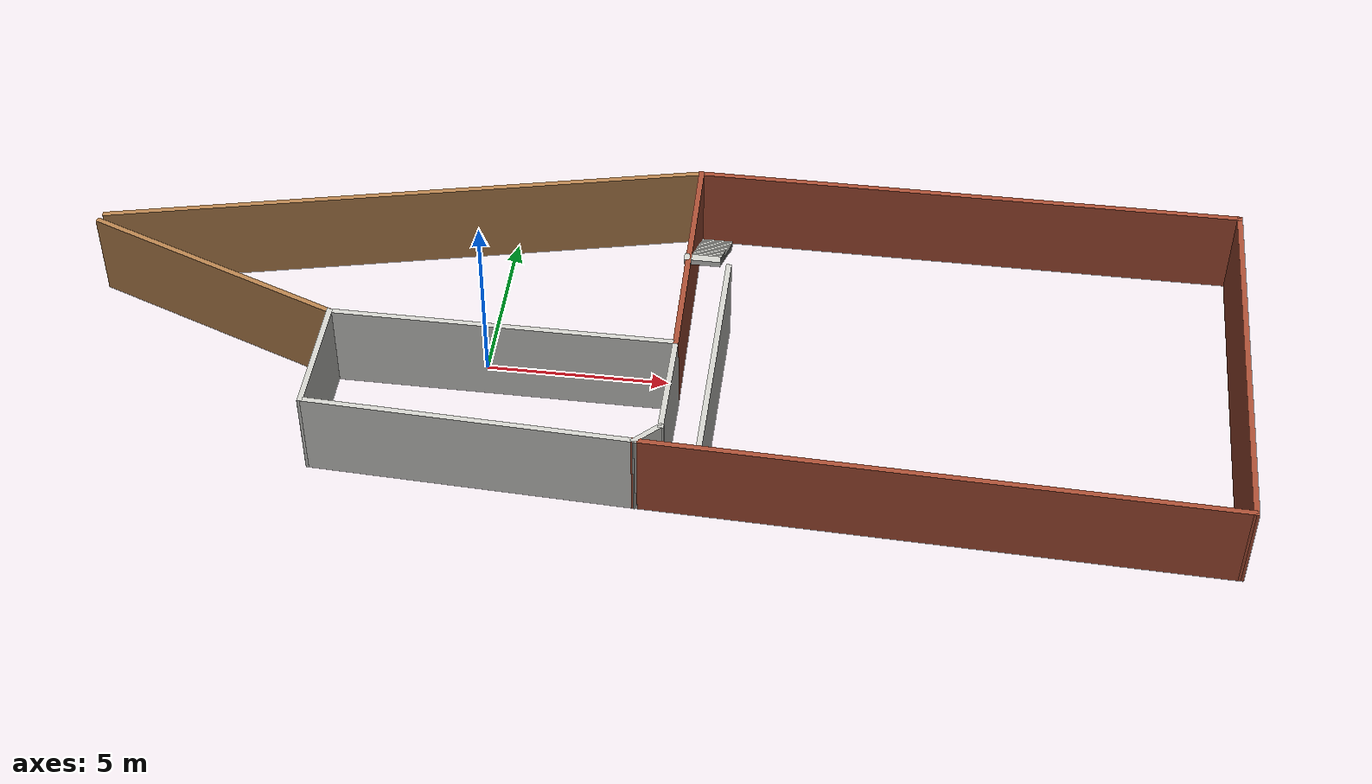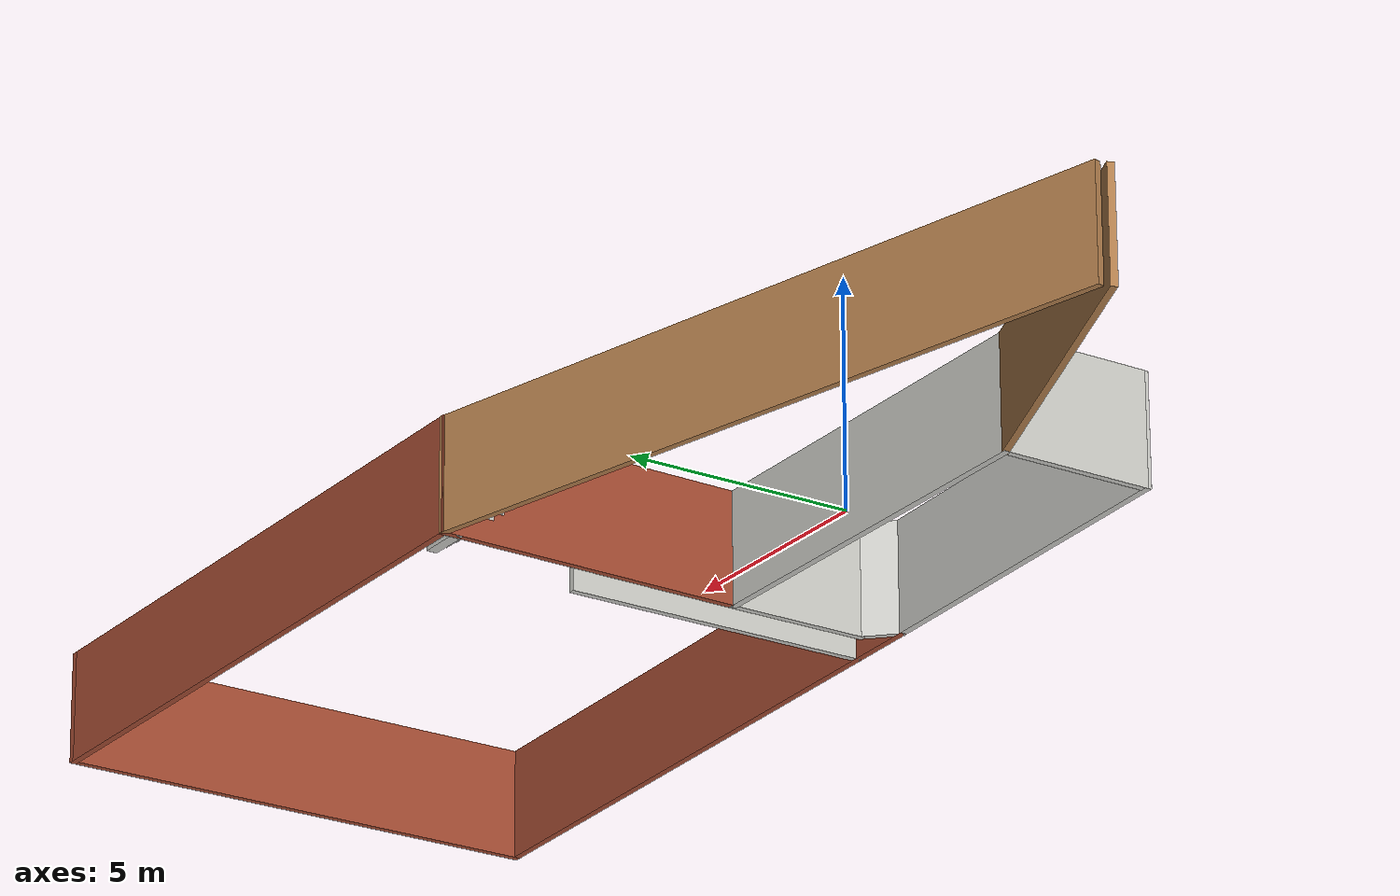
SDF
<?xml version='1.0'?>
<sdf version='1.7'>
  <model name='walls_world'>
    <pose>4.53343 0.476876 0 0 -0 0</pose>
    <link name='Stairs_0'>
      <visual name='Stairs_0_Visual_0'>
        <pose>1.09555 5.24812 0.083333 0 -0 0</pose>
        <geometry>
          <box>
            <size>1 0.233333 0.166667</size>
          </box>
        </geometry>
        <material>
          <script>
            <uri>file://media/materials/scripts/gazebo.material</uri>
            <name>Gazebo/CeilingTiled</name>
          </script>
          <ambient>0.760784 0.662745 0.627451 1</ambient>
        </material>
        <meta>
          <layer>0</layer>
        </meta>
      </visual>
      <collision name='Stairs_0_Collision_0'>
        <geometry>
          <box>
            <size>1 0.233333 0.166667</size>
          </box>
        </geometry>
        <pose>1.09555 5.24812 0.083333 0 -0 0</pose>
      </collision>
      <visual name='Stairs_0_Visual_1'>
        <pose>1.09555 5.01479 0.25 0 -0 0</pose>
        <geometry>
          <box>
            <size>1 0.233333 0.166667</size>
          </box>
        </geometry>
        <material>
          <script>
            <uri>file://media/materials/scripts/gazebo.material</uri>
            <name>Gazebo/CeilingTiled</name>
          </script>
          <ambient>0.760784 0.662745 0.627451 1</ambient>
        </material>
        <meta>
          <layer>0</layer>
        </meta>
      </visual>
      <collision name='Stairs_0_Collision_1'>
        <geometry>
          <box>
            <size>1 0.233333 0.166667</size>
          </box>
        </geometry>
        <pose>1.09555 5.01479 0.25 0 -0 0</pose>
      </collision>
      <visual name='Stairs_0_Visual_2'>
        <pose>1.09555 4.78145 0.416667 0 -0 0</pose>
        <geometry>
          <box>
            <size>1 0.233333 0.166667</size>
          </box>
        </geometry>
        <material>
          <script>
            <uri>file://media/materials/scripts/gazebo.material</uri>
            <name>Gazebo/CeilingTiled</name>
          </script>
          <ambient>0.760784 0.662745 0.627451 1</ambient>
        </material>
        <meta>
          <layer>0</layer>
        </meta>
      </visual>
      <collision name='Stairs_0_Collision_2'>
        <geometry>
          <box>
            <size>1 0.233333 0.166667</size>
          </box>
        </geometry>
        <pose>1.09555 4.78145 0.416667 0 -0 0</pose>
      </collision>
      <visual name='Stairs_0_Visual_3'>
        <pose>1.09555 4.54812 0.583333 0 -0 0</pose>
        <geometry>
          <box>
            <size>1 0.233333 0.166667</size>
          </box>
        </geometry>
        <material>
          <script>
            <uri>file://media/materials/scripts/gazebo.material</uri>
            <name>Gazebo/CeilingTiled</name>
          </script>
          <ambient>0.760784 0.662745 0.627451 1</ambient>
        </material>
        <meta>
          <layer>0</layer>
        </meta>
      </visual>
      <collision name='Stairs_0_Collision_3'>
        <geometry>
          <box>
            <size>1 0.233333 0.166667</size>
          </box>
        </geometry>
        <pose>1.09555 4.54812 0.583333 0 -0 0</pose>
      </collision>
      <visual name='Stairs_0_Visual_4'>
        <pose>1.09555 4.31479 0.75 0 -0 0</pose>
        <geometry>
          <box>
            <size>1 0.233333 0.166667</size>
          </box>
        </geometry>
        <material>
          <script>
            <uri>file://media/materials/scripts/gazebo.material</uri>
            <name>Gazebo/CeilingTiled</name>
          </script>
          <ambient>0.760784 0.662745 0.627451 1</ambient>
        </material>
        <meta>
          <layer>0</layer>
        </meta>
      </visual>
      <collision name='Stairs_0_Collision_4'>
        <geometry>
          <box>
            <size>1 0.233333 0.166667</size>
          </box>
        </geometry>
        <pose>1.09555 4.31479 0.75 0 -0 0</pose>
      </collision>
      <visual name='Stairs_0_Visual_5'>
        <pose>1.09555 4.08145 0.916667 0 -0 0</pose>
        <geometry>
          <box>
            <size>1 0.233333 0.166667</size>
          </box>
        </geometry>
        <material>
          <script>
            <uri>file://media/materials/scripts/gazebo.material</uri>
            <name>Gazebo/CeilingTiled</name>
          </script>
          <ambient>0.760784 0.662745 0.627451 1</ambient>
        </material>
        <meta>
          <layer>0</layer>
        </meta>
      </visual>
      <collision name='Stairs_0_Collision_5'>
        <geometry>
          <box>
            <size>1 0.233333 0.166667</size>
          </box>
        </geometry>
        <pose>1.09555 4.08145 0.916667 0 -0 0</pose>
      </collision>
      <visual name='Stairs_0_Visual_6'>
        <pose>1.09555 3.84812 1.08333 0 -0 0</pose>
        <geometry>
          <box>
            <size>1 0.233333 0.166667</size>
          </box>
        </geometry>
        <material>
          <script>
            <uri>file://media/materials/scripts/gazebo.material</uri>
            <name>Gazebo/CeilingTiled</name>
          </script>
          <ambient>0.760784 0.662745 0.627451 1</ambient>
        </material>
        <meta>
          <layer>0</layer>
        </meta>
      </visual>
      <collision name='Stairs_0_Collision_6'>
        <geometry>
          <box>
            <size>1 0.233333 0.166667</size>
          </box>
        </geometry>
        <pose>1.09555 3.84812 1.08333 0 -0 0</pose>
      </collision>
      <visual name='Stairs_0_Visual_7'>
        <pose>1.09555 3.61479 1.25 0 -0 0</pose>
        <geometry>
          <box>
            <size>1 0.233333 0.166667</size>
          </box>
        </geometry>
        <material>
          <script>
            <uri>file://media/materials/scripts/gazebo.material</uri>
            <name>Gazebo/CeilingTiled</name>
          </script>
          <ambient>0.760784 0.662745 0.627451 1</ambient>
        </material>
        <meta>
          <layer>0</layer>
        </meta>
      </visual>
      <collision name='Stairs_0_Collision_7'>
        <geometry>
          <box>
            <size>1 0.233333 0.166667</size>
          </box>
        </geometry>
        <pose>1.09555 3.61479 1.25 0 -0 0</pose>
      </collision>
      <visual name='Stairs_0_Visual_8'>
        <pose>1.09555 3.38145 1.41667 0 -0 0</pose>
        <geometry>
          <box>
            <size>1 0.233333 0.166667</size>
          </box>
        </geometry>
        <material>
          <script>
            <uri>file://media/materials/scripts/gazebo.material</uri>
            <name>Gazebo/CeilingTiled</name>
          </script>
          <ambient>0.760784 0.662745 0.627451 1</ambient>
        </material>
        <meta>
          <layer>0</layer>
        </meta>
      </visual>
      <collision name='Stairs_0_Collision_8'>
        <geometry>
          <box>
            <size>1 0.233333 0.166667</size>
          </box>
        </geometry>
        <pose>1.09555 3.38145 1.41667 0 -0 0</pose>
      </collision>
      <visual name='Stairs_0_Visual_9'>
        <pose>1.09555 3.14812 1.58333 0 -0 0</pose>
        <geometry>
          <box>
            <size>1 0.233333 0.166667</size>
          </box>
        </geometry>
        <material>
          <script>
            <uri>file://media/materials/scripts/gazebo.material</uri>
            <name>Gazebo/CeilingTiled</name>
          </script>
          <ambient>0.760784 0.662745 0.627451 1</ambient>
        </material>
        <meta>
          <layer>0</layer>
        </meta>
      </visual>
      <collision name='Stairs_0_Collision_9'>
        <geometry>
          <box>
            <size>1 0.233333 0.166667</size>
          </box>
        </geometry>
        <pose>1.09555 3.14812 1.58333 0 -0 0</pose>
      </collision>
      <visual name='Stairs_0_Visual_10'>
        <pose>1.09555 2.91479 1.75 0 -0 0</pose>
        <geometry>
          <box>
            <size>1 0.233333 0.166667</size>
          </box>
        </geometry>
        <material>
          <script>
            <uri>file://media/materials/scripts/gazebo.material</uri>
            <name>Gazebo/CeilingTiled</name>
          </script>
          <ambient>0.760784 0.662745 0.627451 1</ambient>
        </material>
        <meta>
          <layer>0</layer>
        </meta>
      </visual>
      <collision name='Stairs_0_Collision_10'>
        <geometry>
          <box>
            <size>1 0.233333 0.166667</size>
          </box>
        </geometry>
        <pose>1.09555 2.91479 1.75 0 -0 0</pose>
      </collision>
      <visual name='Stairs_0_Visual_11'>
        <pose>1.09555 2.68145 1.91667 0 -0 0</pose>
        <geometry>
          <box>
            <size>1 0.233333 0.166667</size>
          </box>
        </geometry>
        <material>
          <script>
            <uri>file://media/materials/scripts/gazebo.material</uri>
            <name>Gazebo/CeilingTiled</name>
          </script>
          <ambient>0.760784 0.662745 0.627451 1</ambient>
        </material>
        <meta>
          <layer>0</layer>
        </meta>
      </visual>
      <collision name='Stairs_0_Collision_11'>
        <geometry>
          <box>
            <size>1 0.233333 0.166667</size>
          </box>
        </geometry>
        <pose>1.09555 2.68145 1.91667 0 -0 0</pose>
      </collision>
      <visual name='Stairs_0_Visual_12'>
        <pose>1.09555 2.44812 2.08333 0 -0 0</pose>
        <geometry>
          <box>
            <size>1 0.233333 0.166667</size>
          </box>
        </geometry>
        <material>
          <script>
            <uri>file://media/materials/scripts/gazebo.material</uri>
            <name>Gazebo/CeilingTiled</name>
          </script>
          <ambient>0.760784 0.662745 0.627451 1</ambient>
        </material>
        <meta>
          <layer>0</layer>
        </meta>
      </visual>
      <collision name='Stairs_0_Collision_12'>
        <geometry>
          <box>
            <size>1 0.233333 0.166667</size>
          </box>
        </geometry>
        <pose>1.09555 2.44812 2.08333 0 -0 0</pose>
      </collision>
      <visual name='Stairs_0_Visual_13'>
        <pose>1.09555 2.21479 2.25 0 -0 0</pose>
        <geometry>
          <box>
            <size>1 0.233333 0.166667</size>
          </box>
        </geometry>
        <material>
          <script>
            <uri>file://media/materials/scripts/gazebo.material</uri>
            <name>Gazebo/CeilingTiled</name>
          </script>
          <ambient>0.760784 0.662745 0.627451 1</ambient>
        </material>
        <meta>
          <layer>0</layer>
        </meta>
      </visual>
      <collision name='Stairs_0_Collision_13'>
        <geometry>
          <box>
            <size>1 0.233333 0.166667</size>
          </box>
        </geometry>
        <pose>1.09555 2.21479 2.25 0 -0 0</pose>
      </collision>
      <visual name='Stairs_0_Visual_14'>
        <pose>1.09555 1.98145 2.41667 0 -0 0</pose>
        <geometry>
          <box>
            <size>1 0.233333 0.166667</size>
          </box>
        </geometry>
        <material>
          <script>
            <uri>file://media/materials/scripts/gazebo.material</uri>
            <name>Gazebo/CeilingTiled</name>
          </script>
          <ambient>0.760784 0.662745 0.627451 1</ambient>
        </material>
        <meta>
          <layer>0</layer>
        </meta>
      </visual>
      <collision name='Stairs_0_Collision_14'>
        <geometry>
          <box>
            <size>1 0.233333 0.166667</size>
          </box>
        </geometry>
        <pose>1.09555 1.98145 2.41667 0 -0 0</pose>
      </collision>
    </link>
    <link name='Wall_0'>
      <collision name='Wall_0_Collision'>
        <geometry>
          <box>
            <size>3.5 0.15 2.5</size>
          </box>
        </geometry>
        <pose>0 0 1.25 0 -0 0</pose>
      </collision>
      <visual name='Wall_0_Visual'>
        <pose>0 0 1.25 0 -0 0</pose>
        <geometry>
          <box>
            <size>3.5 0.15 2.5</size>
          </box>
        </geometry>
        <material>
          <script>
            <uri>file://media/materials/scripts/gazebo.material</uri>
            <name>Gazebo/CeilingTiled</name>
          </script>
          <ambient>1 1 1 1</ambient>
        </material>
        <meta>
          <layer>0</layer>
        </meta>
      </visual>
      <pose>-8.56343 -3.06188 0 0 -0 1.5708</pose>
    </link>
    <link name='Wall_1'>
      <collision name='Wall_1_Collision'>
        <geometry>
          <box>
            <size>9.5 0.15 2.5</size>
          </box>
        </geometry>
        <pose>0 0 1.25 0 -0 0</pose>
      </collision>
      <visual name='Wall_1_Visual'>
        <pose>0 0 1.25 0 -0 0</pose>
        <geometry>
          <box>
            <size>9.5 0.15 2.5</size>
          </box>
        </geometry>
        <material>
          <script>
            <uri>file://media/materials/scripts/gazebo.material</uri>
            <name>Gazebo/CeilingTiled</name>
          </script>
          <ambient>1 1 1 1</ambient>
        </material>
        <meta>
          <layer>0</layer>
        </meta>
      </visual>
      <pose>-3.88843 -1.38688 0 0 -0 0</pose>
    </link>
    <link name='Wall_10'>
      <collision name='Wall_10_Collision'>
        <geometry>
          <box>
            <size>16.9098 0.15 2.5</size>
          </box>
        </geometry>
        <pose>0 0 1.25 0 -0 0</pose>
      </collision>
      <visual name='Wall_10_Visual'>
        <pose>0 0 1.25 0 -0 0</pose>
        <geometry>
          <box>
            <size>16.9098 0.15 2.5</size>
          </box>
        </geometry>
        <material>
          <script>
            <uri>file://media/materials/scripts/gazebo.material</uri>
            <name>Gazebo/Wood</name>
          </script>
          <ambient>1 1 1 1</ambient>
        </material>
        <meta>
          <layer>0</layer>
        </meta>
      </visual>
      <pose>-7.49968 3.60157 0 0 -0 0.233855</pose>
    </link>
    <link name='Wall_11'>
      <collision name='Wall_11_Collision'>
        <geometry>
          <box>
            <size>15.25 0.15 2.5</size>
          </box>
        </geometry>
        <pose>0 0 1.25 0 -0 0</pose>
      </collision>
      <visual name='Wall_11_Visual'>
        <pose>0 0 1.25 0 -0 0</pose>
        <geometry>
          <box>
            <size>15.25 0.15 2.5</size>
          </box>
        </geometry>
        <material>
          <script>
            <uri>file://media/materials/scripts/gazebo.material</uri>
            <name>Gazebo/Bricks</name>
          </script>
          <ambient>1 1 1 1</ambient>
        </material>
        <meta>
          <layer>0</layer>
        </meta>
      </visual>
      <pose>8.20212 5.54344 0 0 -0 0</pose>
    </link>
    <link name='Wall_12'>
      <collision name='Wall_12_Collision'>
        <geometry>
          <box>
            <size>11.25 0.15 2.5</size>
          </box>
        </geometry>
        <pose>0 0 1.25 0 -0 0</pose>
      </collision>
      <visual name='Wall_12_Visual'>
        <pose>0 0 1.25 0 -0 0</pose>
        <geometry>
          <box>
            <size>11.25 0.15 2.5</size>
          </box>
        </geometry>
        <material>
          <script>
            <uri>file://media/materials/scripts/gazebo.material</uri>
            <name>Gazebo/Bricks</name>
          </script>
          <ambient>1 1 1 1</ambient>
        </material>
        <meta>
          <layer>0</layer>
        </meta>
      </visual>
      <pose>15.7521 -0.006558 0 0 -0 -1.5708</pose>
    </link>
    <link name='Wall_13'>
      <collision name='Wall_13_Collision'>
        <geometry>
          <box>
            <size>15.7236 0.15 2.5</size>
          </box>
        </geometry>
        <pose>0 0 1.25 0 -0 0</pose>
      </collision>
      <visual name='Wall_13_Visual'>
        <pose>0 0 1.25 0 -0 0</pose>
        <geometry>
          <box>
            <size>15.7236 0.15 2.5</size>
          </box>
        </geometry>
        <material>
          <script>
            <uri>file://media/materials/scripts/gazebo.material</uri>
            <name>Gazebo/Bricks</name>
          </script>
          <ambient>1 1 1 1</ambient>
        </material>
        <meta>
          <layer>0</layer>
        </meta>
      </visual>
      <pose>7.96882 -5.32224 0 0 -0 3.1115</pose>
    </link>
    <link name='Wall_15'>
      <collision name='Wall_15_Collision'>
        <geometry>
          <box>
            <size>7 0.15 2.5</size>
          </box>
        </geometry>
        <pose>0 0 1.25 0 -0 0</pose>
      </collision>
      <visual name='Wall_15_Visual'>
        <pose>0 0 1.25 0 -0 0</pose>
        <geometry>
          <box>
            <size>7 0.15 2.5</size>
          </box>
        </geometry>
        <material>
          <script>
            <uri>file://media/materials/scripts/gazebo.material</uri>
            <name>Gazebo/CeilingTiled</name>
          </script>
          <ambient>0.760784 0.662745 0.627451 1</ambient>
        </material>
        <meta>
          <layer>0</layer>
        </meta>
      </visual>
      <pose>1.84458 -1.68112 0 0 -0 1.5708</pose>
    </link>
    <link name='Wall_2'>
      <collision name='Wall_2_Collision'>
        <geometry>
          <box>
            <size>3.25 0.15 2.5</size>
          </box>
        </geometry>
        <pose>0 0 1.25 0 -0 0</pose>
      </collision>
      <visual name='Wall_2_Visual'>
        <pose>0 0 1.25 0 -0 0</pose>
        <geometry>
          <box>
            <size>3.25 0.15 2.5</size>
          </box>
        </geometry>
        <material>
          <script>
            <uri>file://media/materials/scripts/gazebo.material</uri>
            <name>Gazebo/CeilingTiled</name>
          </script>
          <ambient>1 1 1 1</ambient>
        </material>
        <meta>
          <layer>0</layer>
        </meta>
      </visual>
      <pose>0.786568 -2.93688 0 0 -0 -1.5708</pose>
    </link>
    <link name='Wall_3'>
      <collision name='Wall_3_Collision'>
        <geometry>
          <box>
            <size>1 0.15 2.5</size>
          </box>
        </geometry>
        <pose>0 0 1.25 0 -0 0</pose>
      </collision>
      <visual name='Wall_3_Visual'>
        <pose>0 0 1.25 0 -0 0</pose>
        <geometry>
          <box>
            <size>1 0.15 2.5</size>
          </box>
        </geometry>
        <material>
          <script>
            <uri>file://media/materials/scripts/gazebo.material</uri>
            <name>Gazebo/CeilingTiled</name>
          </script>
          <ambient>1 1 1 1</ambient>
        </material>
        <meta>
          <layer>0</layer>
        </meta>
      </visual>
      <pose>0.486048 -4.7874 0 0 -0 -2.35619</pose>
    </link>
    <link name='Wall_4'>
      <collision name='Wall_4_Collision'>
        <geometry>
          <box>
            <size>8.906 0.15 2.5</size>
          </box>
        </geometry>
        <pose>0 0 1.25 0 -0 0</pose>
      </collision>
      <visual name='Wall_4_Visual'>
        <pose>0 0 1.25 0 -0 0</pose>
        <geometry>
          <box>
            <size>8.906 0.15 2.5</size>
          </box>
        </geometry>
        <material>
          <script>
            <uri>file://media/materials/scripts/gazebo.material</uri>
            <name>Gazebo/CeilingTiled</name>
          </script>
          <ambient>1 1 1 1</ambient>
        </material>
        <meta>
          <layer>0</layer>
        </meta>
      </visual>
      <pose>-4.18895 -4.9124 0 0 -0 3.10149</pose>
    </link>
    <link name='Wall_6'>
      <collision name='Wall_6_Collision'>
        <geometry>
          <box>
            <size>7.08162 0.15 2.5</size>
          </box>
        </geometry>
        <pose>0 0 1.25 0 -0 0</pose>
      </collision>
      <visual name='Wall_6_Visual'>
        <pose>0 0 1.25 0 -0 0</pose>
        <geometry>
          <box>
            <size>7.08162 0.15 2.5</size>
          </box>
        </geometry>
        <material>
          <script>
            <uri>file://media/materials/scripts/gazebo.material</uri>
            <name>Gazebo/Bricks</name>
          </script>
          <ambient>1 1 1 1</ambient>
        </material>
        <meta>
          <layer>0</layer>
        </meta>
      </visual>
      <pose>0.719344 2.07828 0 0 -0 -1.5514</pose>
    </link>
    <link name='Wall_8'>
      <collision name='Wall_8_Collision'>
        <geometry>
          <box>
            <size>7.83312 0.15 2.5</size>
          </box>
        </geometry>
        <pose>0 0 1.25 0 -0 0</pose>
      </collision>
      <visual name='Wall_8_Visual'>
        <pose>0 0 1.25 0 -0 0</pose>
        <geometry>
          <box>
            <size>7.83312 0.15 2.5</size>
          </box>
        </geometry>
        <material>
          <script>
            <uri>file://media/materials/scripts/gazebo.material</uri>
            <name>Gazebo/Wood</name>
          </script>
          <ambient>1 1 1 1</ambient>
        </material>
        <meta>
          <layer>0</layer>
        </meta>
      </visual>
      <pose>-12.1479 -0.005179 0 0 -0 -0.367915</pose>
    </link>
    <static>1</static>
  </model>
</sdf>
